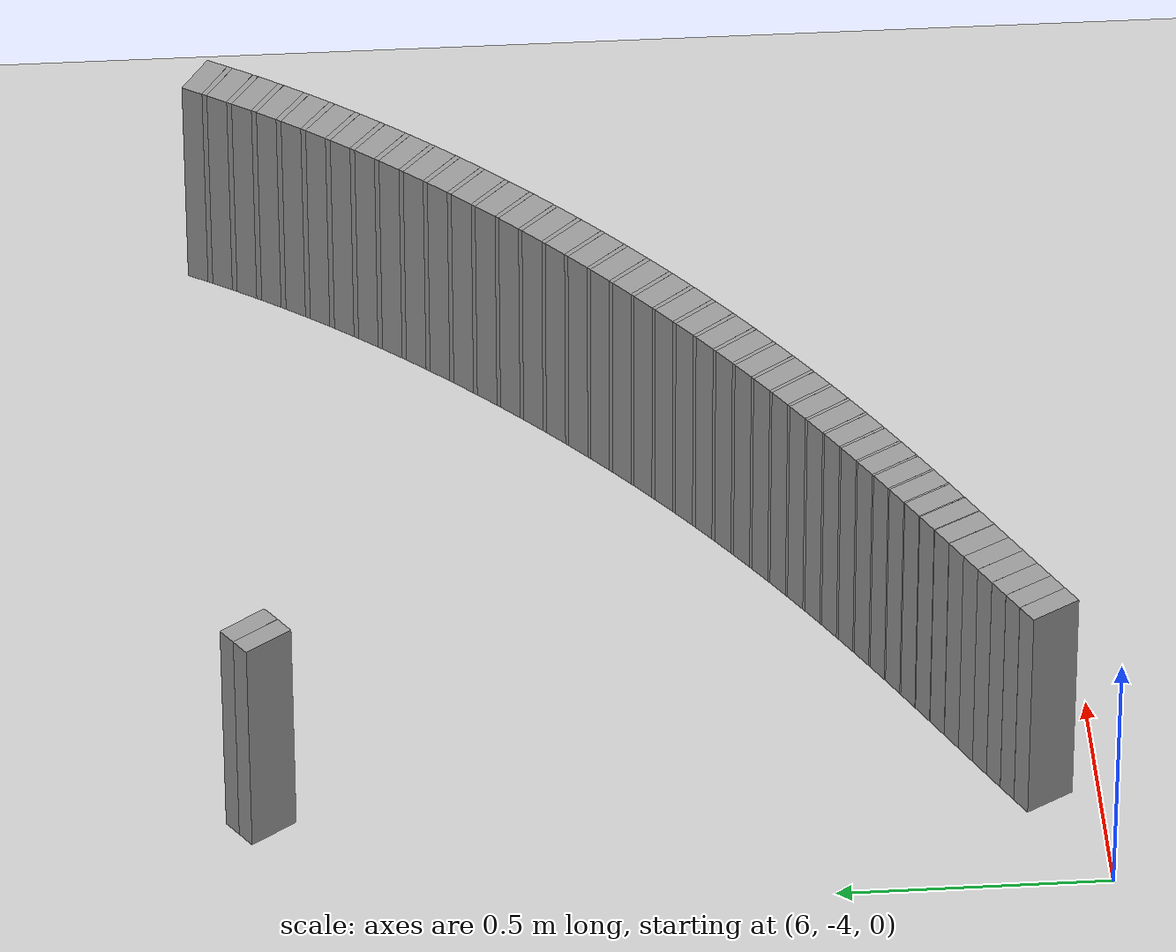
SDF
<sdf version="1.6">
 <world name="default">
  <include><uri>model://ground_plane</uri></include>
  <include><uri>model://sun</uri></include>
  <model name="wall_653_outward">
   <static>true</static>
   <link name="link">
    <collision name="collision">
     <geometry><box><size>0.038638323293889144 0.1 0.45</size></box></geometry>
    </collision>
    <visual name="visual">
     <geometry><box><size>0.038638323293889144 0.1 0.45</size></box></geometry>
     <material>
      <script><uri>file://media/materials/scripts/gazebo.material</uri><name>Gazebo/Gray</name></script>
     </material>
    </visual>
   </link>
   <pose>6.248566411541034 -2.4918859940441305 0.225 0 0 0.6120288497119731</pose>
  </model>
  <model name="wall_654_outward">
   <static>true</static>
   <link name="link">
    <collision name="collision">
     <geometry><box><size>0.03866729532479433 0.1 0.45</size></box></geometry>
    </collision>
    <visual name="visual">
     <geometry><box><size>0.03866729532479433 0.1 0.45</size></box></geometry>
     <material>
      <script><uri>file://media/materials/scripts/gazebo.material</uri><name>Gazebo/Gray</name></script>
     </material>
    </visual>
   </link>
   <pose>6.280061078996452 -2.4694791737032338 0.225 0 0 0.6247023636464634</pose>
  </model>
  <model name="wall_876_inward">
   <static>true</static>
   <link name="link">
    <collision name="collision">
     <geometry><box><size>0.0418322488790588 0.1 0.45</size></box></geometry>
    </collision>
    <visual name="visual">
     <geometry><box><size>0.0418322488790588 0.1 0.45</size></box></geometry>
     <material>
      <script><uri>file://media/materials/scripts/gazebo.material</uri><name>Gazebo/Gray</name></script>
     </material>
    </visual>
   </link>
   <pose>6.243962587730447 -3.8964181327842358 0.225 0 0 0.5340303179717626</pose>
  </model>
  <model name="wall_877_inward">
   <static>true</static>
   <link name="link">
    <collision name="collision">
     <geometry><box><size>0.042348802624741555 0.1 0.45</size></box></geometry>
    </collision>
    <visual name="visual">
     <geometry><box><size>0.042348802624741555 0.1 0.45</size></box></geometry>
     <material>
      <script><uri>file://media/materials/scripts/gazebo.material</uri><name>Gazebo/Gray</name></script>
     </material>
    </visual>
   </link>
   <pose>6.280255243192449 -3.875100525569341 0.225 0 0 0.5281834872196918</pose>
  </model>
  <model name="wall_878_inward">
   <static>true</static>
   <link name="link">
    <collision name="collision">
     <geometry><box><size>0.042957942242219764 0.1 0.45</size></box></geometry>
    </collision>
    <visual name="visual">
     <geometry><box><size>0.042957942242219764 0.1 0.45</size></box></geometry>
     <material>
      <script><uri>file://media/materials/scripts/gazebo.material</uri><name>Gazebo/Gray</name></script>
     </material>
    </visual>
   </link>
   <pose>6.317145965097351 -3.853690830502087 0.225 0 0 0.5235475943472488</pose>
  </model>
  <model name="wall_879_inward">
   <static>true</static>
   <link name="link">
    <collision name="collision">
     <geometry><box><size>0.043653729533656704 0.1 0.45</size></box></geometry>
    </collision>
    <visual name="visual">
     <geometry><box><size>0.043653729533656704 0.1 0.45</size></box></geometry>
     <material>
      <script><uri>file://media/materials/scripts/gazebo.material</uri><name>Gazebo/Gray</name></script>
     </material>
    </visual>
   </link>
   <pose>6.35468645579158 -3.8321014347064803 0.225 0 0 0.5202917982800764</pose>
  </model>
  <model name="wall_880_inward">
   <static>true</static>
   <link name="link">
    <collision name="collision">
     <geometry><box><size>0.04441604899596813 0.1 0.45</size></box></geometry>
    </collision>
    <visual name="visual">
     <geometry><box><size>0.04441604899596813 0.1 0.45</size></box></geometry>
     <material>
      <script><uri>file://media/materials/scripts/gazebo.material</uri><name>Gazebo/Gray</name></script>
     </material>
    </visual>
   </link>
   <pose>6.392913592293112 -3.8102438036182438 0.225 0 0 0.5185499643897473</pose>
  </model>
  <model name="wall_881_inward">
   <static>true</static>
   <link name="link">
    <collision name="collision">
     <geometry><box><size>0.044793180224996225 0.1 0.45</size></box></geometry>
    </collision>
    <visual name="visual">
     <geometry><box><size>0.044793180224996225 0.1 0.45</size></box></geometry>
     <material>
      <script><uri>file://media/materials/scripts/gazebo.material</uri><name>Gazebo/Gray</name></script>
     </material>
    </visual>
   </link>
   <pose>6.431656277580879 -3.7881400490176294 0.225 0 0 0.518383404730884</pose>
  </model>
  <model name="wall_882_inward">
   <static>true</static>
   <link name="link">
    <collision name="collision">
     <geometry><box><size>0.0008728372735805185 0.1 0.45</size></box></geometry>
    </collision>
    <visual name="visual">
     <geometry><box><size>0.0008728372735805185 0.1 0.45</size></box></geometry>
     <material>
      <script><uri>file://media/materials/scripts/gazebo.material</uri><name>Gazebo/Gray</name></script>
     </material>
    </visual>
   </link>
   <pose>6.451489357928679 -3.776826552330415 0.225 0 0 0.5191107691899471</pose>
  </model>
  <model name="wall_883_inward">
   <static>true</static>
   <link name="link">
    <collision name="collision">
     <geometry><box><size>0.04472765943852304 0.1 0.45</size></box></geometry>
    </collision>
    <visual name="visual">
     <geometry><box><size>0.04472765943852304 0.1 0.45</size></box></geometry>
     <material>
      <script><uri>file://media/materials/scripts/gazebo.material</uri><name>Gazebo/Gray</name></script>
     </material>
    </visual>
   </link>
   <pose>6.47127784185917 -3.765501040259574 0.225 0 0 0.5198381336484716</pose>
  </model>
  <model name="wall_884_inward">
   <static>true</static>
   <link name="link">
    <collision name="collision">
     <geometry><box><size>0.0018091604386469664 0.1 0.45</size></box></geometry>
    </collision>
    <visual name="visual">
     <geometry><box><size>0.0018091604386469664 0.1 0.45</size></box></geometry>
     <material>
      <script><uri>file://media/materials/scripts/gazebo.material</uri><name>Gazebo/Gray</name></script>
     </material>
    </visual>
   </link>
   <pose>6.49147180712201 -3.7539415150940867 0.225 0 0 0.5213457679185027</pose>
  </model>
  <model name="wall_885_inward">
   <static>true</static>
   <link name="link">
    <collision name="collision">
     <geometry><box><size>0.04464920169666018 0.1 0.45</size></box></geometry>
    </collision>
    <visual name="visual">
     <geometry><box><size>0.04464920169666018 0.1 0.45</size></box></geometry>
     <material>
      <script><uri>file://media/materials/scripts/gazebo.material</uri><name>Gazebo/Gray</name></script>
     </material>
    </visual>
   </link>
   <pose>6.51159819977012 -3.742343104593208 0.225 0 0 0.522853402188481</pose>
  </model>
  <model name="wall_886_inward">
   <static>true</static>
   <link name="link">
    <collision name="collision">
     <geometry><box><size>0.0027001450293905136 0.1 0.45</size></box></geometry>
    </collision>
    <visual name="visual">
     <geometry><box><size>0.0027001450293905136 0.1 0.45</size></box></geometry>
     <material>
      <script><uri>file://media/materials/scripts/gazebo.material</uri><name>Gazebo/Gray</name></script>
     </material>
    </visual>
   </link>
   <pose>6.532108365955568 -3.7305184232320996 0.225 0 0 0.5251035249451513</pose>
  </model>
  <model name="wall_887_inward">
   <static>true</static>
   <link name="link">
    <collision name="collision">
     <geometry><box><size>0.04461297132705235 0.1 0.45</size></box></geometry>
    </collision>
    <visual name="visual">
     <geometry><box><size>0.04461297132705235 0.1 0.45</size></box></geometry>
     <material>
      <script><uri>file://media/materials/scripts/gazebo.material</uri><name>Gazebo/Gray</name></script>
     </material>
    </visual>
   </link>
   <pose>6.552552514135792 -3.7186159277984103 0.225 0 0 0.5273536477016276</pose>
  </model>
  <model name="wall_888_inward">
   <static>true</static>
   <link name="link">
    <collision name="collision">
     <geometry><box><size>0.0035042931794384054 0.1 0.45</size></box></geometry>
    </collision>
    <visual name="visual">
     <geometry><box><size>0.0035042931794384054 0.1 0.45</size></box></geometry>
     <material>
      <script><uri>file://media/materials/scripts/gazebo.material</uri><name>Gazebo/Gray</name></script>
     </material>
    </visual>
   </link>
   <pose>6.5733400041058925 -3.706504044652691 0.225 0 0 0.5302738961683332</pose>
  </model>
  <model name="wall_889_inward">
   <static>true</static>
   <link name="link">
    <collision name="collision">
     <geometry><box><size>0.04462036280885561 0.1 0.45</size></box></geometry>
    </collision>
    <visual name="visual">
     <geometry><box><size>0.04462036280885561 0.1 0.45</size></box></geometry>
     <material>
      <script><uri>file://media/materials/scripts/gazebo.material</uri><name>Gazebo/Gray</name></script>
     </material>
    </visual>
   </link>
   <pose>6.59406478474205 -3.6942778938797973 0.225 0 0 0.5331941446351695</pose>
  </model>
  <model name="wall_890_inward">
   <static>true</static>
   <link name="link">
    <collision name="collision">
     <geometry><box><size>0.004233114015713617 0.1 0.45</size></box></geometry>
    </collision>
    <visual name="visual">
     <geometry><box><size>0.004233114015713617 0.1 0.45</size></box></geometry>
     <material>
      <script><uri>file://media/materials/scripts/gazebo.material</uri><name>Gazebo/Gray</name></script>
     </material>
    </visual>
   </link>
   <pose>6.615096990525086 -3.6818556846661106 0.225 0 0 0.536721746964528</pose>
  </model>
  <model name="wall_891_inward">
   <static>true</static>
   <link name="link">
    <collision name="collision">
     <geometry><box><size>0.04467230473522638 0.1 0.45</size></box></geometry>
    </collision>
    <visual name="visual">
     <geometry><box><size>0.04467230473522638 0.1 0.45</size></box></geometry>
     <material>
      <script><uri>file://media/materials/scripts/gazebo.material</uri><name>Gazebo/Gray</name></script>
     </material>
    </visual>
   </link>
   <pose>6.636070985188901 -3.6692848471703106 0.225 0 0 0.5402493492938184</pose>
  </model>
  <model name="wall_892_inward">
   <static>true</static>
   <link name="link">
    <collision name="collision">
     <geometry><box><size>0.004843347530410962 0.1 0.45</size></box></geometry>
    </collision>
    <visual name="visual">
     <geometry><box><size>0.004843347530410962 0.1 0.45</size></box></geometry>
     <material>
      <script><uri>file://media/materials/scripts/gazebo.material</uri><name>Gazebo/Gray</name></script>
     </material>
    </visual>
   </link>
   <pose>6.657297768734871 -3.6565422911490133 0.225 0 0 0.5442854831941221</pose>
  </model>
  <model name="wall_893_inward">
   <static>true</static>
   <link name="link">
    <collision name="collision">
     <geometry><box><size>0.04476545260216841 0.1 0.45</size></box></geometry>
    </collision>
    <visual name="visual">
     <geometry><box><size>0.04476545260216841 0.1 0.45</size></box></geometry>
     <material>
      <script><uri>file://media/materials/scripts/gazebo.material</uri><name>Gazebo/Gray</name></script>
     </material>
    </visual>
   </link>
   <pose>6.678470936400196 -3.6436212095121037 0.225 0 0 0.5483216170945416</pose>
  </model>
  <model name="wall_894_inward">
   <static>true</static>
   <link name="link">
    <collision name="collision">
     <geometry><box><size>0.005370291707535728 0.1 0.45</size></box></geometry>
    </collision>
    <visual name="visual">
     <geometry><box><size>0.005370291707535728 0.1 0.45</size></box></geometry>
     <material>
      <script><uri>file://media/materials/scripts/gazebo.material</uri><name>Gazebo/Gray</name></script>
     </material>
    </visual>
   </link>
   <pose>6.699857586582605 -3.6305441989725074 0.225 0 0 0.552796875122488</pose>
  </model>
  <model name="wall_895_inward">
   <static>true</static>
   <link name="link">
    <collision name="collision">
     <geometry><box><size>0.044897300761012164 0.1 0.45</size></box></geometry>
    </collision>
    <visual name="visual">
     <geometry><box><size>0.044897300761012164 0.1 0.45</size></box></geometry>
     <material>
      <script><uri>file://media/materials/scripts/gazebo.material</uri><name>Gazebo/Gray</name></script>
     </material>
    </visual>
   </link>
   <pose>6.721194996105762 -3.61726182490959 0.225 0 0 0.5572721331504543</pose>
  </model>
  <model name="wall_896_inward">
   <static>true</static>
   <link name="link">
    <collision name="collision">
     <geometry><box><size>0.005826798055233726 0.1 0.45</size></box></geometry>
    </collision>
    <visual name="visual">
     <geometry><box><size>0.005826798055233726 0.1 0.45</size></box></geometry>
     <material>
      <script><uri>file://media/materials/scripts/gazebo.material</uri><name>Gazebo/Gray</name></script>
     </material>
    </visual>
   </link>
   <pose>6.742712280993752 -3.6038365331359095 0.225 0 0 0.5621278172774193</pose>
  </model>
  <model name="wall_897_inward">
   <static>true</static>
   <link name="link">
    <collision name="collision">
     <geometry><box><size>0.04506426530309218 0.1 0.45</size></box></geometry>
    </collision>
    <visual name="visual">
     <geometry><box><size>0.04506426530309218 0.1 0.45</size></box></geometry>
     <material>
      <script><uri>file://media/materials/scripts/gazebo.material</uri><name>Gazebo/Gray</name></script>
     </material>
    </visual>
   </link>
   <pose>6.764183790586273 -3.590181943779273 0.225 0 0 0.5669835014043694</pose>
  </model>
  <model name="wall_898_inward">
   <static>true</static>
   <link name="link">
    <collision name="collision">
     <geometry><box><size>0.0062257826236386685 0.1 0.45</size></box></geometry>
    </collision>
    <visual name="visual">
     <geometry><box><size>0.0062257826236386685 0.1 0.45</size></box></geometry>
     <material>
      <script><uri>file://media/materials/scripts/gazebo.material</uri><name>Gazebo/Gray</name></script>
     </material>
    </visual>
   </link>
   <pose>6.785807298503508 -3.5763946571910057 0.225 0 0 0.5721716768658194</pose>
  </model>
  <model name="wall_899_inward">
   <static>true</static>
   <link name="link">
    <collision name="collision">
     <geometry><box><size>0.045265119310295227 0.1 0.45</size></box></geometry>
    </collision>
    <visual name="visual">
     <geometry><box><size>0.045265119310295227 0.1 0.45</size></box></geometry>
     <material>
      <script><uri>file://media/materials/scripts/gazebo.material</uri><name>Gazebo/Gray</name></script>
     </material>
    </visual>
   </link>
   <pose>6.807388361584952 -3.5623559939574703 0.225 0 0 0.5773598523273614</pose>
  </model>
  <model name="wall_900_inward">
   <static>true</static>
   <link name="link">
    <collision name="collision">
     <geometry><box><size>0.006589763175487394 0.1 0.45</size></box></geometry>
    </collision>
    <visual name="visual">
     <geometry><box><size>0.006589763175487394 0.1 0.45</size></box></geometry>
     <material>
      <script><uri>file://media/materials/scripts/gazebo.material</uri><name>Gazebo/Gray</name></script>
     </material>
    </visual>
   </link>
   <pose>6.8291032182101565 -3.54818930901234 0.225 0 0 0.58285134924099</pose>
  </model>
  <model name="wall_901_inward">
   <static>true</static>
   <link name="link">
    <collision name="collision">
     <geometry><box><size>0.04550066908445057 0.1 0.45</size></box></geometry>
    </collision>
    <visual name="visual">
     <geometry><box><size>0.04550066908445057 0.1 0.45</size></box></geometry>
     <material>
      <script><uri>file://media/materials/scripts/gazebo.material</uri><name>Gazebo/Gray</name></script>
     </material>
    </visual>
   </link>
   <pose>6.850779231516286 -3.533749729036068 0.225 0 0 0.5883428461546035</pose>
  </model>
  <model name="wall_902_inward">
   <static>true</static>
   <link name="link">
    <collision name="collision">
     <geometry><box><size>0.006933990710609477 0.1 0.45</size></box></geometry>
    </collision>
    <visual name="visual">
     <geometry><box><size>0.006933990710609477 0.1 0.45</size></box></geometry>
     <material>
      <script><uri>file://media/materials/scripts/gazebo.material</uri><name>Gazebo/Gray</name></script>
     </material>
    </visual>
   </link>
   <pose>6.872577252880163 -3.5191829168253372 0.225 0 0 0.5941212039027416</pose>
  </model>
  <model name="wall_903_inward">
   <static>true</static>
   <link name="link">
    <collision name="collision">
     <geometry><box><size>0.0457707097342168 0.1 0.45</size></box></geometry>
    </collision>
    <visual name="visual">
     <geometry><box><size>0.0457707097342168 0.1 0.45</size></box></geometry>
     <material>
      <script><uri>file://media/materials/scripts/gazebo.material</uri><name>Gazebo/Gray</name></script>
     </material>
    </visual>
   </link>
   <pose>6.894339542723319 -3.5043220132927804 0.225 0 0 0.5998995616508467</pose>
  </model>
  <model name="wall_904_inward">
   <static>true</static>
   <link name="link">
    <collision name="collision">
     <geometry><box><size>0.007277528225347666 0.1 0.45</size></box></geometry>
    </collision>
    <visual name="visual">
     <geometry><box><size>0.007277528225347666 0.1 0.45</size></box></geometry>
     <material>
      <script><uri>file://media/materials/scripts/gazebo.material</uri><name>Gazebo/Gray</name></script>
     </material>
    </visual>
   </link>
   <pose>6.91621983314153 -3.489329391238824 0.225 0 0 0.6059642056814097</pose>
  </model>
  <model name="wall_905_inward">
   <static>true</static>
   <link name="link">
    <collision name="collision">
     <geometry><box><size>0.046079259395291054 0.1 0.45</size></box></geometry>
    </collision>
    <visual name="visual">
     <geometry><box><size>0.046079259395291054 0.1 0.45</size></box></geometry>
     <material>
      <script><uri>file://media/materials/scripts/gazebo.material</uri><name>Gazebo/Gray</name></script>
     </material>
    </visual>
   </link>
   <pose>6.938068297234676 -3.474019974868292 0.225 0 0 0.6120288497119712</pose>
  </model>
  <model name="wall_906_inward">
   <static>true</static>
   <link name="link">
    <collision name="collision">
     <geometry><box><size>0.007604057470946788 0.1 0.45</size></box></geometry>
    </collision>
    <visual name="visual">
     <geometry><box><size>0.007604057470946788 0.1 0.45</size></box></geometry>
     <material>
      <script><uri>file://media/materials/scripts/gazebo.material</uri><name>Gazebo/Gray</name></script>
     </material>
    </visual>
   </link>
   <pose>6.960023862818105 -3.458578982350401 0.225 0 0 0.6183656066792341</pose>
  </model>
  <model name="wall_907_inward">
   <static>true</static>
   <link name="link">
    <collision name="collision">
     <geometry><box><size>0.046426688274191594 0.1 0.45</size></box></geometry>
    </collision>
    <visual name="visual">
     <geometry><box><size>0.046426688274191594 0.1 0.45</size></box></geometry>
     <material>
      <script><uri>file://media/materials/scripts/gazebo.material</uri><name>Gazebo/Gray</name></script>
     </material>
    </visual>
   </link>
   <pose>6.981951066179273 -3.442798469676002 0.225 0 0 0.6247023636464574</pose>
  </model>
  <model name="wall_908_inward">
   <static>true</static>
   <link name="link">
    <collision name="collision">
     <geometry><box><size>0.007914403618933126 0.1 0.45</size></box></geometry>
    </collision>
    <visual name="visual">
     <geometry><box><size>0.007914403618933126 0.1 0.45</size></box></geometry>
     <material>
      <script><uri>file://media/materials/scripts/gazebo.material</uri><name>Gazebo/Gray</name></script>
     </material>
    </visual>
   </link>
   <pose>7.0039747735398965 -3.426886496658156 0.225 0 0 0.6312977478109951</pose>
  </model>
  <model name="wall_909_inward">
   <static>true</static>
   <link name="link">
    <collision name="collision">
     <geometry><box><size>0.04681275123034849 0.1 0.45</size></box></geometry>
    </collision>
    <visual name="visual">
     <geometry><box><size>0.04681275123034849 0.1 0.45</size></box></geometry>
     <material>
      <script><uri>file://media/materials/scripts/gazebo.material</uri><name>Gazebo/Gray</name></script>
     </material>
    </visual>
   </link>
   <pose>7.025972836323318 -3.4106123891798203 0.225 0 0 0.6378931319755464</pose>
  </model>
  <model name="wall_910_inward">
   <static>true</static>
   <link name="link">
    <collision name="collision">
     <geometry><box><size>0.00821590047074474 0.1 0.45</size></box></geometry>
    </collision>
    <visual name="visual">
     <geometry><box><size>0.00821590047074474 0.1 0.45</size></box></geometry>
     <material>
      <script><uri>file://media/materials/scripts/gazebo.material</uri><name>Gazebo/Gray</name></script>
     </material>
    </visual>
   </link>
   <pose>7.04805970405871 -3.394204955090579 0.225 0 0 0.6447397691920299</pose>
  </model>
  <model name="wall_911_inward">
   <static>true</static>
   <link name="link">
    <collision name="collision">
     <geometry><box><size>0.047234578463562875 0.1 0.45</size></box></geometry>
    </collision>
    <visual name="visual">
     <geometry><box><size>0.047234578463562875 0.1 0.45</size></box></geometry>
     <material>
      <script><uri>file://media/materials/scripts/gazebo.material</uri><name>Gazebo/Gray</name></script>
     </material>
    </visual>
   </link>
   <pose>7.070121652099099 -3.3774134452030493 0.225 0 0 0.6515864064085324</pose>
  </model>
  <model name="wall_912_inward">
   <static>true</static>
   <link name="link">
    <collision name="collision">
     <geometry><box><size>0.008478665248678276 0.1 0.45</size></box></geometry>
    </collision>
    <visual name="visual">
     <geometry><box><size>0.008478665248678276 0.1 0.45</size></box></geometry>
     <material>
      <script><uri>file://media/materials/scripts/gazebo.material</uri><name>Gazebo/Gray</name></script>
     </material>
    </visual>
   </link>
   <pose>7.092252835960069 -3.3604960847762335 0.225 0 0 0.6586520195715588</pose>
  </model>
  <model name="wall_913_inward">
   <static>true</static>
   <link name="link">
    <collision name="collision">
     <geometry><box><size>0.0476832345999648 0.1 0.45</size></box></geometry>
    </collision>
    <visual name="visual">
     <geometry><box><size>0.0476832345999648 0.1 0.45</size></box></geometry>
     <material>
      <script><uri>file://media/materials/scripts/gazebo.material</uri><name>Gazebo/Gray</name></script>
     </material>
    </visual>
   </link>
   <pose>7.114356182854644 -3.3431762476263707 0.225 0 0 0.6657176327346433</pose>
  </model>
  <model name="wall_914_inward">
   <static>true</static>
   <link name="link">
    <collision name="collision">
     <geometry><box><size>0.008701451570154648 0.1 0.45</size></box></geometry>
    </collision>
    <visual name="visual">
     <geometry><box><size>0.008701451570154648 0.1 0.45</size></box></geometry>
     <material>
      <script><uri>file://media/materials/scripts/gazebo.material</uri><name>Gazebo/Gray</name></script>
     </material>
    </visual>
   </link>
   <pose>7.136509146177726 -3.3257392475827894 0.225 0 0 0.672968905922763</pose>
  </model>
  <model name="wall_915_inward">
   <static>true</static>
   <link name="link">
    <collision name="collision">
     <geometry><box><size>0.048144845132777114 0.1 0.45</size></box></geometry>
    </collision>
    <visual name="visual">
     <geometry><box><size>0.048144845132777114 0.1 0.45</size></box></geometry>
     <material>
      <script><uri>file://media/materials/scripts/gazebo.material</uri><name>Gazebo/Gray</name></script>
     </material>
    </visual>
   </link>
   <pose>7.158626028932982 -3.3078867028765675 0.225 0 0 0.6802201791108764</pose>
  </model>
  <model name="wall_916_inward">
   <static>true</static>
   <link name="link">
    <collision name="collision">
     <geometry><box><size>0.008882722804871035 0.1 0.45</size></box></geometry>
    </collision>
    <visual name="visual">
     <geometry><box><size>0.008882722804871035 0.1 0.45</size></box></geometry>
     <material>
      <script><uri>file://media/materials/scripts/gazebo.material</uri><name>Gazebo/Gray</name></script>
     </material>
    </visual>
   </link>
   <pose>7.1807728487459475 -3.2899270706394343 0.225 0 0 0.6876225157160766</pose>
  </model>
  <model name="wall_917_inward">
   <static>true</static>
   <link name="link">
    <collision name="collision">
     <geometry><box><size>0.04859959548117985 0.1 0.45</size></box></geometry>
    </collision>
    <visual name="visual">
     <geometry><box><size>0.04859959548117985 0.1 0.45</size></box></geometry>
     <material>
      <script><uri>file://media/materials/scripts/gazebo.material</uri><name>Gazebo/Gray</name></script>
     </material>
    </visual>
   </link>
   <pose>7.202868105576403 -3.2715464302575867 0.225 0 0 0.6950248523212831</pose>
  </model>
  <model name="wall_918_inward">
   <static>true</static>
   <link name="link">
    <collision name="collision">
     <geometry><box><size>0.009022987666914875 0.1 0.45</size></box></geometry>
    </collision>
    <visual name="visual">
     <geometry><box><size>0.009022987666914875 0.1 0.45</size></box></geometry>
     <material>
      <script><uri>file://media/materials/scripts/gazebo.material</uri><name>Gazebo/Gray</name></script>
     </material>
    </visual>
   </link>
   <pose>7.224974444025606 -3.2530695765127478 0.225 0 0 0.7025440795648634</pose>
  </model>
  <model name="wall_919_inward">
   <static>true</static>
   <link name="link">
    <collision name="collision">
     <geometry><box><size>0.04902393912169967 0.1 0.45</size></box></geometry>
    </collision>
    <visual name="visual">
     <geometry><box><size>0.04902393912169967 0.1 0.45</size></box></geometry>
     <material>
      <script><uri>file://media/materials/scripts/gazebo.material</uri><name>Gazebo/Gray</name></script>
     </material>
    </visual>
   </link>
   <pose>7.247005551290043 -3.2341755169235977 0.225 0 0 0.7100633068083819</pose>
  </model>
  <model name="wall_920_inward">
   <static>true</static>
   <link name="link">
    <collision name="collision">
     <geometry><box><size>0.009128829898859069 0.1 0.45</size></box></geometry>
    </collision>
    <visual name="visual">
     <geometry><box><size>0.009128829898859069 0.1 0.45</size></box></geometry>
     <material>
      <script><uri>file://media/materials/scripts/gazebo.material</uri><name>Gazebo/Gray</name></script>
     </material>
    </visual>
   </link>
   <pose>7.269032037358835 -3.2151949064832825 0.225 0 0 0.7176707384347214</pose>
  </model>
  <model name="wall_921_inward">
   <static>true</static>
   <link name="link">
    <collision name="collision">
     <geometry><box><size>0.04939135985583434 0.1 0.45</size></box></geometry>
    </collision>
    <visual name="visual">
     <geometry><box><size>0.04939135985583434 0.1 0.45</size></box></geometry>
     <material>
      <script><uri>file://media/materials/scripts/gazebo.material</uri><name>Gazebo/Gray</name></script>
     </material>
    </visual>
   </link>
   <pose>7.290950737705122 -3.1958114804736955 0.225 0 0 0.7252781700610599</pose>
  </model>
  <model name="wall_922_inward">
   <static>true</static>
   <link name="link">
    <collision name="collision">
     <geometry><box><size>0.009219736035972058 0.1 0.45</size></box></geometry>
    </collision>
    <visual name="visual">
     <geometry><box><size>0.009219736035972058 0.1 0.45</size></box></geometry>
     <material>
      <script><uri>file://media/materials/scripts/gazebo.material</uri><name>Gazebo/Gray</name></script>
     </material>
    </visual>
   </link>
   <pose>7.312856920509021 -3.176345418338653 0.225 0 0 0.7329613590156425</pose>
  </model>
  <model name="wall_923_inward">
   <static>true</static>
   <link name="link">
    <collision name="collision">
     <geometry><box><size>0.049674317941474866 0.1 0.45</size></box></geometry>
    </collision>
    <visual name="visual">
     <geometry><box><size>0.049674317941474866 0.1 0.45</size></box></geometry>
     <material>
      <script><uri>file://media/materials/scripts/gazebo.material</uri><name>Gazebo/Gray</name></script>
     </material>
    </visual>
   </link>
   <pose>7.3346136200301135 -3.1565018635765405 0.225 0 0 0.7406445479703475</pose>
  </model>
  <model name="wall_924_inward">
   <static>true</static>
   <link name="link">
    <collision name="collision">
     <geometry><box><size>0.009304333679212736 0.1 0.45</size></box></geometry>
    </collision>
    <visual name="visual">
     <geometry><box><size>0.009304333679212736 0.1 0.45</size></box></geometry>
     <material>
      <script><uri>file://media/materials/scripts/gazebo.material</uri><name>Gazebo/Gray</name></script>
     </material>
    </visual>
   </link>
   <pose>7.356353296378771 -3.136577008184033 0.225 0 0 0.748398237061098</pose>
  </model>
  <model name="wall_925_inward">
   <static>true</static>
   <link name="link">
    <collision name="collision">
     <geometry><box><size>0.04984788678726249 0.1 0.45</size></box></geometry>
    </collision>
    <visual name="visual">
     <geometry><box><size>0.04984788678726249 0.1 0.45</size></box></geometry>
     <material>
      <script><uri>file://media/materials/scripts/gazebo.material</uri><name>Gazebo/Gray</name></script>
     </material>
    </visual>
   </link>
   <pose>7.377894021718401 -3.1163103735964417 0.225 0 0 0.7561519261517086</pose>
  </model>
  <model name="wall_926_inward">
   <static>true</static>
   <link name="link">
    <collision name="collision">
     <geometry><box><size>0.009406657697572138 0.1 0.45</size></box></geometry>
    </collision>
    <visual name="visual">
     <geometry><box><size>0.009406657697572138 0.1 0.45</size></box></geometry>
     <material>
      <script><uri>file://media/materials/scripts/gazebo.material</uri><name>Gazebo/Gray</name></script>
     </material>
    </visual>
   </link>
   <pose>7.399421917022419 -3.095955576105064 0.225 0 0 0.7639908878492427</pose>
  </model>
  <model name="wall_927_inward">
   <static>true</static>
   <link name="link">
    <collision name="collision">
     <geometry><box><size>0.049892621150402786 0.1 0.45</size></box></geometry>
    </collision>
    <visual name="visual">
     <geometry><box><size>0.049892621150402786 0.1 0.45</size></box></geometry>
     <material>
      <script><uri>file://media/materials/scripts/gazebo.material</uri><name>Gazebo/Gray</name></script>
     </material>
    </visual>
   </link>
   <pose>7.420695516042678 -3.075303024377912 0.225 0 0 0.7718298495467919</pose>
  </model>
  <model name="wall_928_inward">
   <static>true</static>
   <link name="link">
    <collision name="collision">
     <geometry><box><size>0.009535433476601846 0.1 0.45</size></box></geometry>
    </collision>
    <visual name="visual">
     <geometry><box><size>0.009535433476601846 0.1 0.45</size></box></geometry>
     <material>
      <script><uri>file://media/materials/scripts/gazebo.material</uri><name>Gazebo/Gray</name></script>
     </material>
    </visual>
   </link>
   <pose>7.441963116370376 -3.054551998247792 0.225 0 0 0.779776127736086</pose>
  </model>
  <model name="wall_929_inward">
   <static>true</static>
   <link name="link">
    <collision name="collision">
     <geometry><box><size>0.04979546939087137 0.1 0.45</size></box></geometry>
    </collision>
    <visual name="visual">
     <geometry><box><size>0.04979546939087137 0.1 0.45</size></box></geometry>
     <material>
      <script><uri>file://media/materials/scripts/gazebo.material</uri><name>Gazebo/Gray</name></script>
     </material>
    </visual>
   </link>
   <pose>7.462917691715755 -3.033553491504455 0.225 0 0 0.7877224059254411</pose>
  </model>
  <model name="wall_930_inward">
   <static>true</static>
   <link name="link">
    <collision name="collision">
     <geometry><box><size>0.009705414011620667 0.1 0.45</size></box></geometry>
    </collision>
    <visual name="visual">
     <geometry><box><size>0.009705414011620667 0.1 0.45</size></box></geometry>
     <material>
      <script><uri>file://media/materials/scripts/gazebo.material</uri><name>Gazebo/Gray</name></script>
     </material>
    </visual>
   </link>
   <pose>7.483877550641024 -3.012440339399589 0.225 0 0 0.7958103391130814</pose>
  </model>
  <model name="wall_931_inward">
   <static>true</static>
   <link name="link">
    <collision name="collision">
     <geometry><box><size>0.04955374974166954 0.1 0.45</size></box></geometry>
    </collision>
    <visual name="visual">
     <geometry><box><size>0.04955374974166954 0.1 0.45</size></box></geometry>
     <material>
      <script><uri>file://media/materials/scripts/gazebo.material</uri><name>Gazebo/Gray</name></script>
     </material>
    </visual>
   </link>
   <pose>7.504465815858253 -2.9911324161679294 0.225 0 0 0.8038982723007139</pose>
  </model>
  <model name="wall_932_inward">
   <static>true</static>
   <link name="link">
    <collision name="collision">
     <geometry><box><size>0.009930902690033725 0.1 0.45</size></box></geometry>
    </collision>
    <visual name="visual">
     <geometry><box><size>0.009930902690033725 0.1 0.45</size></box></geometry>
     <material>
      <script><uri>file://media/materials/scripts/gazebo.material</uri><name>Gazebo/Gray</name></script>
     </material>
    </visual>
   </link>
   <pose>7.5250744563605565 -2.9696875687854773 0.225 0 0 0.8121741190103601</pose>
  </model>
  <model name="wall_933_inward">
   <static>true</static>
   <link name="link">
    <collision name="collision">
     <geometry><box><size>0.0491743842697834 0.1 0.45</size></box></geometry>
    </collision>
    <visual name="visual">
     <geometry><box><size>0.0491743842697834 0.1 0.45</size></box></geometry>
     <material>
      <script><uri>file://media/materials/scripts/gazebo.material</uri><name>Gazebo/Gray</name></script>
     </material>
    </visual>
   </link>
   <pose>7.545256113417391 -2.9480993522431618 0.225 0 0 0.8204499657200348</pose>
  </model>
  <model name="wall_934_inward">
   <static>true</static>
   <link name="link">
    <collision name="collision">
     <geometry><box><size>0.010189243171218838 0.1 0.45</size></box></geometry>
    </collision>
    <visual name="visual">
     <geometry><box><size>0.010189243171218838 0.1 0.45</size></box></geometry>
     <material>
      <script><uri>file://media/materials/scripts/gazebo.material</uri><name>Gazebo/Gray</name></script>
     </material>
    </visual>
   </link>
   <pose>7.565464142254585 -2.926359145138397 0.225 0 0 0.8289411037300157</pose>
  </model>
  <model name="wall_935_inward">
   <static>true</static>
   <link name="link">
    <collision name="collision">
     <geometry><box><size>0.048674531189035794 0.1 0.45</size></box></geometry>
    </collision>
    <visual name="visual">
     <geometry><box><size>0.048674531189035794 0.1 0.45</size></box></geometry>
     <material>
      <script><uri>file://media/materials/scripts/gazebo.material</uri><name>Gazebo/Gray</name></script>
     </material>
    </visual>
   </link>
   <pose>7.585197058703081 -2.9045225004344335 0.225 0 0 0.837432241740052</pose>
  </model>
  <model name="wall_936_inward">
   <static>true</static>
   <link name="link">
    <collision name="collision">
     <geometry><box><size>0.010503072453580398 0.1 0.45</size></box></geometry>
    </collision>
    <visual name="visual">
     <geometry><box><size>0.010503072453580398 0.1 0.45</size></box></geometry>
     <material>
      <script><uri>file://media/materials/scripts/gazebo.material</uri><name>Gazebo/Gray</name></script>
     </material>
    </visual>
   </link>
   <pose>7.604968711654916 -2.8825095691994664 0.225 0 0 0.846184913873585</pose>
  </model>
  <model name="wall_937_inward">
   <static>true</static>
   <link name="link">
    <collision name="collision">
     <geometry><box><size>0.04808136118097128 0.1 0.45</size></box></geometry>
    </collision>
    <visual name="visual">
     <geometry><box><size>0.04808136118097128 0.1 0.45</size></box></geometry>
     <material>
      <script><uri>file://media/materials/scripts/gazebo.material</uri><name>Gazebo/Gray</name></script>
     </material>
    </visual>
   </link>
   <pose>7.624226735519462 -2.8604380307164865 0.225 0 0 0.8549375860071027</pose>
  </model>
  <model name="wall_938_inward">
   <static>true</static>
   <link name="link">
    <collision name="collision">
     <geometry><box><size>0.010820580679087456 0.1 0.45</size></box></geometry>
    </collision>
    <visual name="visual">
     <geometry><box><size>0.010820580679087456 0.1 0.45</size></box></geometry>
     <material>
      <script><uri>file://media/materials/scripts/gazebo.material</uri><name>Gazebo/Gray</name></script>
     </material>
    </visual>
   </link>
   <pose>7.6435174403543975 -2.838184540656396 0.225 0 0 0.8639548587734098</pose>
  </model>
  <model name="wall_939_inward">
   <static>true</static>
   <link name="link">
    <collision name="collision">
     <geometry><box><size>0.04742824941964132 0.1 0.45</size></box></geometry>
    </collision>
    <visual name="visual">
     <geometry><box><size>0.04742824941964132 0.1 0.45</size></box></geometry>
     <material>
      <script><uri>file://media/materials/scripts/gazebo.material</uri><name>Gazebo/Gray</name></script>
     </material>
    </visual>
   </link>
   <pose>7.6622686320643245 -2.8158997043490883 0.225 0 0 0.8729721315397087</pose>
  </model>
  <model name="wall_940_inward">
   <static>true</static>
   <link name="link">
    <collision name="collision">
     <geometry><box><size>0.011145908360067389 0.1 0.45</size></box></geometry>
    </collision>
    <visual name="visual">
     <geometry><box><size>0.011145908360067389 0.1 0.45</size></box></geometry>
     <material>
      <script><uri>file://media/materials/scripts/gazebo.material</uri><name>Gazebo/Gray</name></script>
     </material>
    </visual>
   </link>
   <pose>7.681047286178498 -2.7934256362295757 0.225 0 0 0.8822605220638695</pose>
  </model>
  <model name="wall_941_inward">
   <static>true</static>
   <link name="link">
    <collision name="collision">
     <geometry><box><size>0.0467522134362778 0.1 0.45</size></box></geometry>
    </collision>
    <visual name="visual">
     <geometry><box><size>0.0467522134362778 0.1 0.45</size></box></geometry>
     <material>
      <script><uri>file://media/materials/scripts/gazebo.material</uri><name>Gazebo/Gray</name></script>
     </material>
    </visual>
   </link>
   <pose>7.699273430847183 -2.770934648296615 0.225 0 0 0.8915489125881453</pose>
  </model>
  <model name="wall_942_inward">
   <static>true</static>
   <link name="link">
    <collision name="collision">
     <geometry><box><size>0.011438053483458398 0.1 0.45</size></box></geometry>
    </collision>
    <visual name="visual">
     <geometry><box><size>0.011438053483458398 0.1 0.45</size></box></geometry>
     <material>
      <script><uri>file://media/materials/scripts/gazebo.material</uri><name>Gazebo/Gray</name></script>
     </material>
    </visual>
   </link>
   <pose>7.717508640308816 -2.7482632614712776 0.225 0 0 0.9010807681618734</pose>
  </model>
  <model name="wall_943_inward">
   <static>true</static>
   <link name="link">
    <collision name="collision">
     <geometry><box><size>0.04609091809309916 0.1 0.45</size></box></geometry>
    </collision>
    <visual name="visual">
     <geometry><box><size>0.04609091809309916 0.1 0.45</size></box></geometry>
     <material>
      <script><uri>file://media/materials/scripts/gazebo.material</uri><name>Gazebo/Gray</name></script>
     </material>
    </visual>
   </link>
   <pose>7.735191704080219 -2.725576416741938 0.225 0 0 0.910612623735548</pose>
  </model>
  <model name="wall_944_inward">
   <static>true</static>
   <link name="link">
    <collision name="collision">
     <geometry><box><size>0.011661846419764537 0.1 0.45</size></box></geometry>
    </collision>
    <visual name="visual">
     <geometry><box><size>0.011661846419764537 0.1 0.45</size></box></geometry>
     <material>
      <script><uri>file://media/materials/scripts/gazebo.material</uri><name>Gazebo/Gray</name></script>
     </material>
    </visual>
   </link>
   <pose>7.752855562756357 -2.702733018185265 0.225 0 0 0.9203309820621154</pose>
  </model>
  <model name="wall_945_inward">
   <static>true</static>
   <link name="link">
    <collision name="collision">
     <geometry><box><size>0.04548022838197579 0.1 0.45</size></box></geometry>
    </collision>
    <visual name="visual">
     <geometry><box><size>0.04548022838197579 0.1 0.45</size></box></geometry>
     <material>
      <script><uri>file://media/materials/scripts/gazebo.material</uri><name>Gazebo/Gray</name></script>
     </material>
    </visual>
   </link>
   <pose>7.769980431504537 -2.679863157551568 0.225 0 0 0.9300493403886503</pose>
  </model>
  <model name="wall_946_inward">
   <static>true</static>
   <link name="link">
    <collision name="collision">
     <geometry><box><size>0.011815915984391506 0.1 0.45</size></box></geometry>
    </collision>
    <visual name="visual">
     <geometry><box><size>0.011815915984391506 0.1 0.45</size></box></geometry>
     <material>
      <script><uri>file://media/materials/scripts/gazebo.material</uri><name>Gazebo/Gray</name></script>
     </material>
    </visual>
   </link>
   <pose>7.787059283674605 -2.6568629005462165 0.225 0 0 0.9398960961628271</pose>
  </model>
  <model name="wall_947_inward">
   <static>true</static>
   <link name="link">
    <collision name="collision">
     <geometry><box><size>0.04495054260909514 0.1 0.45</size></box></geometry>
    </collision>
    <visual name="visual">
     <geometry><box><size>0.04495054260909514 0.1 0.45</size></box></geometry>
     <material>
      <script><uri>file://media/materials/scripts/gazebo.material</uri><name>Gazebo/Gray</name></script>
     </material>
    </visual>
   </link>
   <pose>7.803622408188394 -2.6338138715578503 0.225 0 0 0.9497428519369762</pose>
  </model>
  <model name="wall_948_inward">
   <static>true</static>
   <link name="link">
    <collision name="collision">
     <geometry><box><size>0.011822109996864758 0.1 0.45</size></box></geometry>
    </collision>
    <visual name="visual">
     <geometry><box><size>0.011822109996864758 0.1 0.45</size></box></geometry>
     <material>
      <script><uri>file://media/materials/scripts/gazebo.material</uri><name>Gazebo/Gray</name></script>
     </material>
    </visual>
   </link>
   <pose>7.8200926642610415 -2.6106945875880228 0.225 0 0 0.9595947696385068</pose>
  </model>
  <model name="wall_949_inward">
   <static>true</static>
   <link name="link">
    <collision name="collision">
     <geometry><box><size>0.04452310137036182 0.1 0.45</size></box></geometry>
    </collision>
    <visual name="visual">
     <geometry><box><size>0.04452310137036182 0.1 0.45</size></box></geometry>
     <material>
      <script><uri>file://media/materials/scripts/gazebo.material</uri><name>Gazebo/Gray</name></script>
     </material>
    </visual>
   </link>
   <pose>7.836079337253277 -2.5874974061717992 0.225 0 0 0.9694466873401748</pose>
  </model>
  <model name="wall_950_inward">
   <static>true</static>
   <link name="link">
    <collision name="collision">
     <geometry><box><size>0.011718463354403031 0.1 0.45</size></box></geometry>
    </collision>
    <visual name="visual">
     <geometry><box><size>0.011718463354403031 0.1 0.45</size></box></geometry>
     <material>
      <script><uri>file://media/materials/scripts/gazebo.material</uri><name>Gazebo/Gray</name></script>
     </material>
    </visual>
   </link>
   <pose>7.851941496595375 -2.564277633074635 0.225 0 0 0.9792122286846213</pose>
  </model>
  <model name="wall_951_inward">
   <static>true</static>
   <link name="link">
    <collision name="collision">
     <geometry><box><size>0.044210634973608894 0.1 0.45</size></box></geometry>
    </collision>
    <visual name="visual">
     <geometry><box><size>0.044210634973608894 0.1 0.45</size></box></geometry>
     <material>
      <script><uri>file://media/materials/scripts/gazebo.material</uri><name>Gazebo/Gray</name></script>
     </material>
    </visual>
   </link>
   <pose>7.867356901761563 -2.5409459177109595 0.225 0 0 0.9889777700288969</pose>
  </model>
  <model name="wall_952_inward">
   <static>true</static>
   <link name="link">
    <collision name="collision">
     <geometry><box><size>0.011483731769859859 0.1 0.45</size></box></geometry>
    </collision>
    <visual name="visual">
     <geometry><box><size>0.011483731769859859 0.1 0.45</size></box></geometry>
     <material>
      <script><uri>file://media/materials/scripts/gazebo.material</uri><name>Gazebo/Gray</name></script>
     </material>
    </visual>
   </link>
   <pose>7.882614107526069 -2.517650603379712 0.225 0 0 0.998547692577533</pose>
  </model>
  <model name="wall_953_inward">
   <static>true</static>
   <link name="link">
    <collision name="collision">
     <geometry><box><size>0.044015663083039225 0.1 0.45</size></box></geometry>
    </collision>
    <visual name="visual">
     <geometry><box><size>0.044015663083039225 0.1 0.45</size></box></geometry>
     <material>
      <script><uri>file://media/materials/scripts/gazebo.material</uri><name>Gazebo/Gray</name></script>
     </material>
    </visual>
   </link>
   <pose>7.897463626898761 -2.494208634419828 0.225 0 0 1.008117615126081</pose>
  </model>
  <model name="wall_954_inward">
   <static>true</static>
   <link name="link">
    <collision name="collision">
     <geometry><box><size>0.011130565809712221 0.1 0.45</size></box></geometry>
    </collision>
    <visual name="visual">
     <geometry><box><size>0.011130565809712221 0.1 0.45</size></box></geometry>
     <material>
      <script><uri>file://media/materials/scripts/gazebo.material</uri><name>Gazebo/Gray</name></script>
     </material>
    </visual>
   </link>
   <pose>7.912128820782751 -2.4708591549627212 0.225 0 0 1.0173932196408972</pose>
  </model>
  <model name="wall_955_inward">
   <static>true</static>
   <link name="link">
    <collision name="collision">
     <geometry><box><size>0.04392917262358199 0.1 0.45</size></box></geometry>
    </collision>
    <visual name="visual">
     <geometry><box><size>0.04392917262358199 0.1 0.45</size></box></geometry>
     <material>
      <script><uri>file://media/materials/scripts/gazebo.material</uri><name>Gazebo/Gray</name></script>
     </material>
    </visual>
   </link>
   <pose>7.92642429925144 -2.447332096552384 0.225 0 0 1.0266688241556876</pose>
  </model>
 </world>
</sdf>
